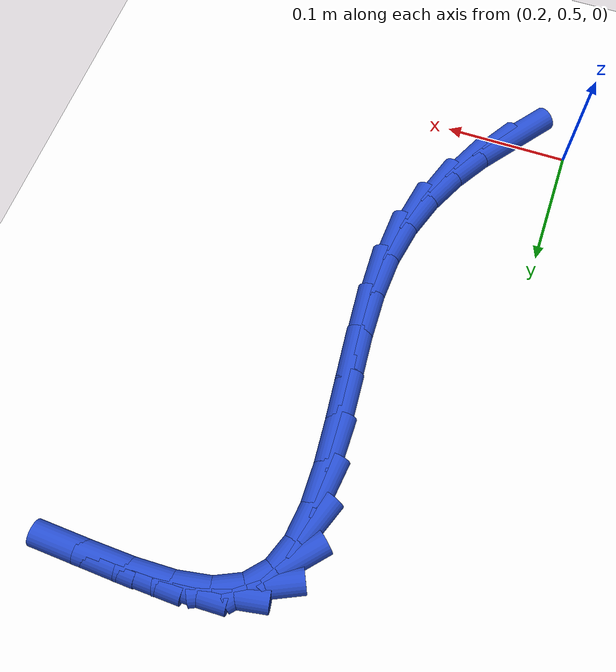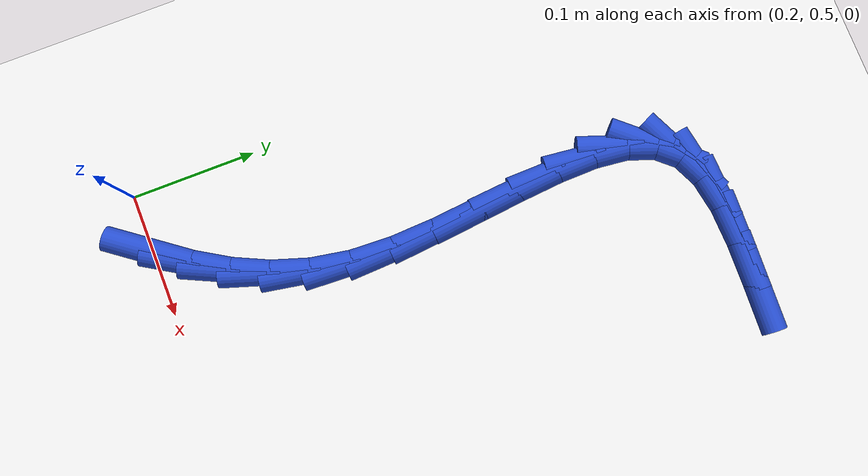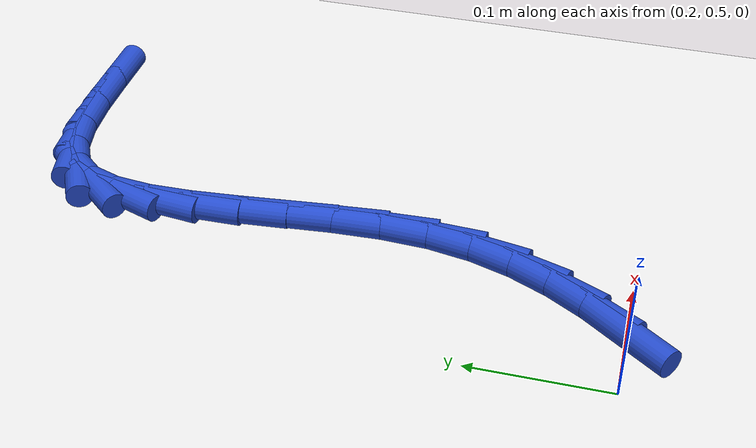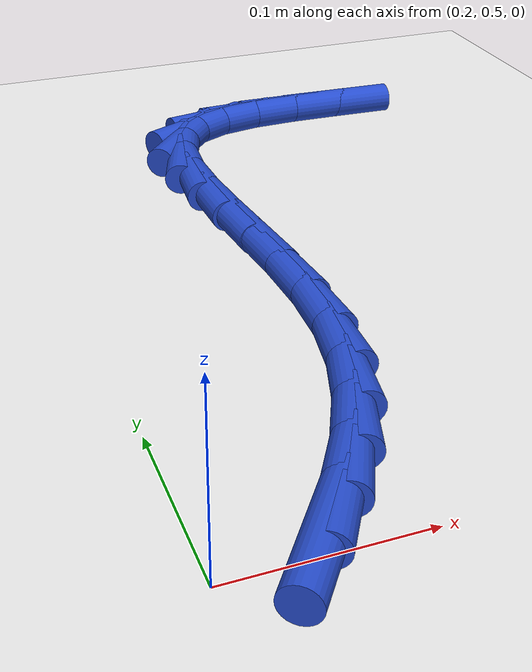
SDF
<sdf version="1.6">
 <world name="default">
  <model name="ground_plane">
   <static>1</static>
   <link name="link">
    <collision name="collision">
     <geometry><plane><normal>0 0 1</normal><size>100 100</size></plane></geometry>
     <surface><friction><ode><mu>100</mu><mu2>50</mu2></ode></friction></surface>
    </collision>
    <visual name="visual">
     <cast_shadows>0</cast_shadows>
     <geometry><plane><normal>0 0 1</normal><size>100 100</size></plane></geometry>
     <material>
      <script><uri>file://media/materials/scripts/gazebo.material</uri><name>Gazebo/WhiteGlow</name></script>
     </material>
    </visual>
   </link>
  </model>
  <model name="line">
   <link name="link_19">
    <pose>0.24854732894005355 0.5026049098619679 0.01 0 1.57 0.9322299052487132</pose>
    <collision name="collision">
     <geometry><cylinder><radius>0.01</radius><length>0.08</length></cylinder></geometry>
    </collision>
    <visual name="visual">
     <material>
      <script><name>Gazebo/Blue</name><uri>file://media/materials/scripts/gazebo.material</uri></script>
     </material>
     <geometry><cylinder><radius>0.01</radius><length>0.08</length></cylinder></geometry>
    </visual>
   </link>
   <link name="link_20">
    <pose>0.2670362803953274 0.5275119624189146 0.01 0 1.57 1.0231480421252712</pose>
    <collision name="collision">
     <geometry><cylinder><radius>0.01</radius><length>0.08</length></cylinder></geometry>
    </collision>
    <visual name="visual">
     <material>
      <script><name>Gazebo/Blue</name><uri>file://media/materials/scripts/gazebo.material</uri></script>
     </material>
     <geometry><cylinder><radius>0.01</radius><length>0.08</length></cylinder></geometry>
    </visual>
   </link>
   <link name="link_21">
    <pose>0.2830890019164439 0.5538333299280518 0.01 0 1.57 1.132603800807505</pose>
    <collision name="collision">
     <geometry><cylinder><radius>0.01</radius><length>0.08</length></cylinder></geometry>
    </collision>
    <visual name="visual">
     <material>
      <script><name>Gazebo/Blue</name><uri>file://media/materials/scripts/gazebo.material</uri></script>
     </material>
     <geometry><cylinder><radius>0.01</radius><length>0.08</length></cylinder></geometry>
    </visual>
   </link>
   <link name="link_22">
    <pose>0.29620936188421465 0.581833924774913 0.01 0 1.57 1.2577782792424819</pose>
    <collision name="collision">
     <geometry><cylinder><radius>0.01</radius><length>0.08</length></cylinder></geometry>
    </collision>
    <visual name="visual">
     <material>
      <script><name>Gazebo/Blue</name><uri>file://media/materials/scripts/gazebo.material</uri></script>
     </material>
     <geometry><cylinder><radius>0.01</radius><length>0.08</length></cylinder></geometry>
    </visual>
   </link>
   <link name="link_23">
    <pose>0.305901228679451 0.6117786593450315 0.01 0 1.57 1.393319189470454</pose>
    <collision name="collision">
     <geometry><cylinder><radius>0.01</radius><length>0.08</length></cylinder></geometry>
    </collision>
    <visual name="visual">
     <material>
      <script><name>Gazebo/Blue</name><uri>file://media/materials/scripts/gazebo.material</uri></script>
     </material>
     <geometry><cylinder><radius>0.01</radius><length>0.08</length></cylinder></geometry>
    </visual>
   </link>
   <link name="link_24">
    <pose>0.3116684706829646 0.6439324460239406 0.01 0 1.57 1.52343696276558</pose>
    <collision name="collision">
     <geometry><cylinder><radius>0.01</radius><length>0.08</length></cylinder></geometry>
    </collision>
    <visual name="visual">
     <material>
      <script><name>Gazebo/Blue</name><uri>file://media/materials/scripts/gazebo.material</uri></script>
     </material>
     <geometry><cylinder><radius>0.01</radius><length>0.08</length></cylinder></geometry>
    </visual>
   </link>
   <link name="link_25">
    <pose>0.31329986506671953 0.6783538227640963 0.01 0 1.57 -1.5292156773577323</pose>
    <collision name="collision">
     <geometry><cylinder><radius>0.01</radius><length>0.08</length></cylinder></geometry>
    </collision>
    <visual name="visual">
     <material>
      <script><name>Gazebo/Blue</name><uri>file://media/materials/scripts/gazebo.material</uri></script>
     </material>
     <geometry><cylinder><radius>0.01</radius><length>0.08</length></cylinder></geometry>
    </visual>
   </link>
   <link name="link_26">
    <pose>0.31180787629895523 0.7142149464027524 0.01 0 1.57 -1.4806744450399367</pose>
    <collision name="collision">
     <geometry><cylinder><radius>0.01</radius><length>0.08</length></cylinder></geometry>
    </collision>
    <visual name="visual">
     <material>
      <script><name>Gazebo/Blue</name><uri>file://media/materials/scripts/gazebo.material</uri></script>
     </material>
     <geometry><cylinder><radius>0.01</radius><length>0.08</length></cylinder></geometry>
    </visual>
   </link>
   <link name="link_27">
    <pose>0.3085334306644922 0.7504500515954341 0.01 0 1.57 -1.4666270595807303</pose>
    <collision name="collision">
     <geometry><cylinder><radius>0.01</radius><length>0.08</length></cylinder></geometry>
    </collision>
    <visual name="visual">
     <material>
      <script><name>Gazebo/Blue</name><uri>file://media/materials/scripts/gazebo.material</uri></script>
     </material>
     <geometry><cylinder><radius>0.01</radius><length>0.08</length></cylinder></geometry>
    </visual>
   </link>
   <link name="link_28">
    <pose>0.304817458530408 0.785993370040673 0.01 0 1.57 -1.4876231146497896</pose>
    <collision name="collision">
     <geometry><cylinder><radius>0.01</radius><length>0.08</length></cylinder></geometry>
    </collision>
    <visual name="visual">
     <material>
      <script><name>Gazebo/Blue</name><uri>file://media/materials/scripts/gazebo.material</uri></script>
     </material>
     <geometry><cylinder><radius>0.01</radius><length>0.08</length></cylinder></geometry>
    </visual>
   </link>
   <link name="link_29">
    <pose>0.3020008902637805 0.8197791334370013 0.01 0 1.57 -1.5521877314463453</pose>
    <collision name="collision">
     <geometry><cylinder><radius>0.01</radius><length>0.08</length></cylinder></geometry>
    </collision>
    <visual name="visual">
     <material>
      <script><name>Gazebo/Blue</name><uri>file://media/materials/scripts/gazebo.material</uri></script>
     </material>
     <geometry><cylinder><radius>0.01</radius><length>0.08</length></cylinder></geometry>
    </visual>
   </link>
   <link name="link_30">
    <pose>0.301424656231687 0.8507415734829504 0.01 0 1.57 1.4602529168605785</pose>
    <collision name="collision">
     <geometry><cylinder><radius>0.01</radius><length>0.08</length></cylinder></geometry>
    </collision>
    <visual name="visual">
     <material>
      <script><name>Gazebo/Blue</name><uri>file://media/materials/scripts/gazebo.material</uri></script>
     </material>
     <geometry><cylinder><radius>0.01</radius><length>0.08</length></cylinder></geometry>
    </visual>
   </link>
   <link name="link_31">
    <pose>0.30442968680120536 0.877814921877053 0.01 0 1.57 1.2266595298818512</pose>
    <collision name="collision">
     <geometry><cylinder><radius>0.01</radius><length>0.08</length></cylinder></geometry>
    </collision>
    <visual name="visual">
     <material>
      <script><name>Gazebo/Blue</name><uri>file://media/materials/scripts/gazebo.material</uri></script>
     </material>
     <geometry><cylinder><radius>0.01</radius><length>0.08</length></cylinder></geometry>
    </visual>
   </link>
   <link name="link_32">
    <pose>0.312356912339413 0.8999334103178404 0.01 0 1.57 0.8486279061733764</pose>
    <collision name="collision">
     <geometry><cylinder><radius>0.01</radius><length>0.08</length></cylinder></geometry>
    </collision>
    <visual name="visual">
     <material>
      <script><name>Gazebo/Blue</name><uri>file://media/materials/scripts/gazebo.material</uri></script>
     </material>
     <geometry><cylinder><radius>0.01</radius><length>0.08</length></cylinder></geometry>
    </visual>
   </link>
   <link name="link_33">
    <pose>0.3265420439564528 0.9160361953909008 0.01 0 1.57 0.43679168437102617</pose>
    <collision name="collision">
     <geometry><cylinder><radius>0.01</radius><length>0.08</length></cylinder></geometry>
    </collision>
    <visual name="visual">
     <material>
      <script><name>Gazebo/Blue</name><uri>file://media/materials/scripts/gazebo.material</uri></script>
     </material>
     <geometry><cylinder><radius>0.01</radius><length>0.08</length></cylinder></geometry>
    </visual>
   </link>
   <link name="link_34">
    <pose>0.34751145643737574 0.9258261228509707 0.01 0 1.57 0.1771759746403621</pose>
    <collision name="collision">
     <geometry><cylinder><radius>0.01</radius><length>0.08</length></cylinder></geometry>
    </collision>
    <visual name="visual">
     <material>
      <script><name>Gazebo/Blue</name><uri>file://media/materials/scripts/gazebo.material</uri></script>
     </material>
     <geometry><cylinder><radius>0.01</radius><length>0.08</length></cylinder></geometry>
    </visual>
   </link>
   <link name="link_35">
    <pose>0.37411359781994674 0.9305893289141138 0.01 0 1.57 0.03947198610408888</pose>
    <collision name="collision">
     <geometry><cylinder><radius>0.01</radius><length>0.08</length></cylinder></geometry>
    </collision>
    <visual name="visual">
     <material>
      <script><name>Gazebo/Blue</name><uri>file://media/materials/scripts/gazebo.material</uri></script>
     </material>
     <geometry><cylinder><radius>0.01</radius><length>0.08</length></cylinder></geometry>
    </visual>
   </link>
   <link name="link_36">
    <pose>0.40498845440354697 0.9318086541414848 0.01 0 1.57 -0.024906830652062367</pose>
    <collision name="collision">
     <geometry><cylinder><radius>0.01</radius><length>0.08</length></cylinder></geometry>
    </collision>
    <visual name="visual">
     <material>
      <script><name>Gazebo/Blue</name><uri>file://media/materials/scripts/gazebo.material</uri></script>
     </material>
     <geometry><cylinder><radius>0.01</radius><length>0.08</length></cylinder></geometry>
    </visual>
   </link>
   <link name="link_37">
    <pose>0.4387760124875581 0.930966939094238 0.01 0 1.57 -0.04015680723872802</pose>
    <collision name="collision">
     <geometry><cylinder><radius>0.01</radius><length>0.08</length></cylinder></geometry>
    </collision>
    <visual name="visual">
     <material>
      <script><name>Gazebo/Blue</name><uri>file://media/materials/scripts/gazebo.material</uri></script>
     </material>
     <geometry><cylinder><radius>0.01</radius><length>0.08</length></cylinder></geometry>
    </visual>
   </link>
  </model>
 </world>
</sdf>
